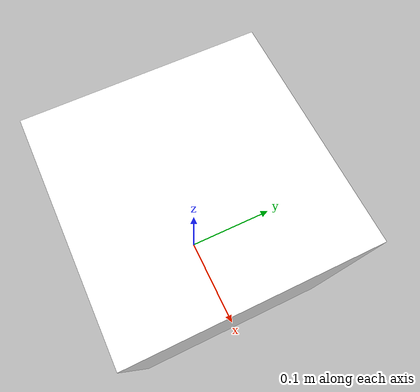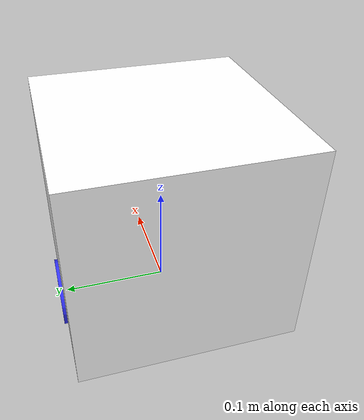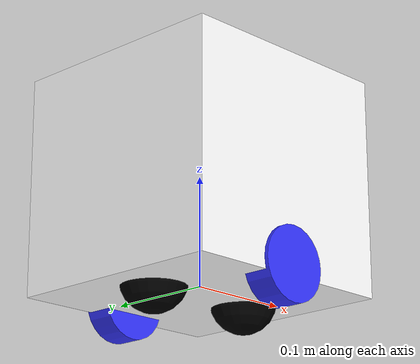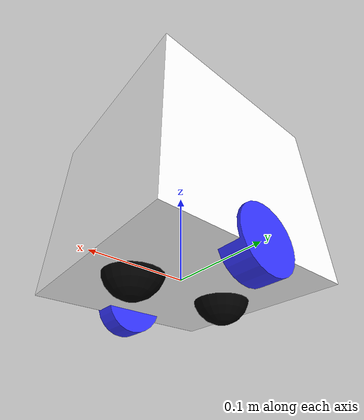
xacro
<?xml version="1.0"?>
<robot xmlns:xacro="http://www.ros.org/wiki/xacro" >

    <xacro:include filename="inertial_macros.xacro"/>

    <xacro:property name="chassis_length" value="0.21"/>
    <xacro:property name="chassis_width" value="0.21"/>
    <xacro:property name="chassis_height" value="0.20"/>
    <xacro:property name="chassis_mass" value="1.0"/>
    <xacro:property name="wheel_radius" value="0.033"/>
    <xacro:property name="wheel_thickness" value="0.026"/>
    <xacro:property name="wheel_mass" value="0.05"/>
    <xacro:property name="wheel_offset_x" value="0.105"/>
    <xacro:property name="wheel_offset_y" value="0.09525"/>
    <xacro:property name="wheel_offset_z" value="0.01"/>
    <xacro:property name="caster_wheel_radius" value="0.03"/>
    <xacro:property name="caster_wheel_mass" value="0.01"/>
    <xacro:property name="caster_wheel_offset_z" value="0.007"/>

    <material name="white">
        <color rgba="1 1 1 1" />
    </material>

    <material name="orange">
        <color rgba="1 0.3 0.1 1"/>
    </material>

    <material name="blue">
        <color rgba="0.2 0.2 1 1"/>
    </material>

    <material name="black">
        <color rgba="0 0 0 1"/>
    </material>

    <material name="red">
        <color rgba="1 0 0 1"/>
    </material>

    <!-- BASE LINK -->

    <link name="base_link">

    </link>

    <!-- BASE_FOOTPRINT LINK -->

    <joint name="base_footprint_joint" type="fixed">
        <parent link="base_link"/>
        <child link="base_footprint"/>
        <origin xyz="0 0 0" rpy="0 0 0"/>
    </joint>

    <link name="base_footprint">
    </link>

    <!-- CHASSIS LINK -->

    <joint name="chassis_joint" type="fixed">
        <parent link="base_link"/>
        <child link="chassis"/>
        <origin xyz="${-wheel_offset_x} 0 ${-wheel_offset_z}"/>
    </joint>

    <link name="chassis">
        <visual>
            <origin xyz="${chassis_length/2} 0 ${chassis_height/2}"/>
            <geometry>
                <box size="${chassis_length} ${chassis_width} ${chassis_height}"/>
            </geometry>
            <material name="white"/>
        </visual>
        <collision>
            <origin xyz="${chassis_length/2} 0 ${chassis_height/2}"/>
            <geometry>
                <box size="${chassis_length} ${chassis_width} ${chassis_height}"/>
            </geometry>
        </collision>
        <xacro:inertial_box mass="0.5" x="${chassis_length}" y="${chassis_width}" z="${chassis_height}">
            <origin xyz="${chassis_length/2} 0 ${chassis_height/2}" rpy="0 0 0"/>
        </xacro:inertial_box>
    </link>

    <gazebo reference="chassis">
        <material>Gazebo/White</material>
    </gazebo>

    <!-- LEFT WHEEL LINK -->

    <joint name="left_wheel_joint" type="continuous">
        <parent link="base_link"/>
        <child link="left_wheel"/>
        <origin xyz="0 ${wheel_offset_y} 0" rpy="-${pi/2} 0 0" />
        <axis xyz="0 0 1"/>
    </joint>

    <link name="left_wheel">
        <visual>
            <geometry>
                <cylinder radius="${wheel_radius}" length="${wheel_thickness}"/>
            </geometry>
            <material name="blue"/>
        </visual>
        <collision>
            <geometry>
                <sphere radius="${wheel_radius}"/>
            </geometry>
        </collision>
        <xacro:inertial_cylinder mass="${wheel_mass}" length="${wheel_thickness}" radius="${wheel_radius}">
            <origin xyz="0 0 0" rpy="0 0 0"/>
        </xacro:inertial_cylinder>
    </link>

    <gazebo reference="left_wheel">
        <material>Gazebo/Blue</material>
    </gazebo>

    <!-- RIGHT WHEEL LINK -->

    <joint name="right_wheel_joint" type="continuous">
        <parent link="base_link"/>
        <child link="right_wheel"/>
        <origin xyz="0 ${-wheel_offset_y} 0" rpy="${pi/2} 0 0" />
        <axis xyz="0 0 -1"/>
    </joint>

    <link name="right_wheel">
        <visual>
            <geometry>
                <cylinder radius="${wheel_radius}" length="${wheel_thickness}"/>
            </geometry>
            <material name="blue"/>
        </visual>
        <collision>
            <geometry>
                <sphere radius="${wheel_radius}"/>
            </geometry>
        </collision>
        <xacro:inertial_cylinder mass="${wheel_mass}" length="${wheel_thickness}" radius="${wheel_radius}">
            <origin xyz="0 0 0" rpy="0 0 0"/>
        </xacro:inertial_cylinder>
    </link>

    <gazebo reference="right_wheel">
        <material>Gazebo/Blue</material>
    </gazebo>

    <!-- CASTER WHEEL LINK -->

    <joint name="caster_wheel_joint" type="fixed">
        <parent link="chassis"/>
        <child link="caster_wheel"/>
        <origin xyz="0.05 0 ${caster_wheel_offset_z}"/>
    </joint>

    <link name="caster_wheel">
        <visual>
            <geometry>
                <sphere radius="${caster_wheel_radius}"/>
            </geometry>
            <material name="black"/>
        </visual>
        <collision>
            <geometry>
                <sphere radius="${caster_wheel_radius}"/>
            </geometry>
        </collision>
        <xacro:inertial_sphere mass="${caster_wheel_mass}" radius="${caster_wheel_radius}">
            <origin xyz="0 0 0" rpy="0 0 0"/>
        </xacro:inertial_sphere>
    </link>

    <gazebo reference="caster_wheel">
        <material>Gazebo/Black</material>
        <mu1 value="0.001"/>
        <mu2 value="0.001"/>

    </gazebo>

    <!-- CASTER WHEEL LINK 2-->

    <joint name="caster_wheel_joint2" type="fixed">
        <parent link="chassis"/>
        <child link="caster_wheel2"/>
        <origin xyz="0.16 0 ${caster_wheel_offset_z}"/>
    </joint>

    <link name="caster_wheel2">
        <visual>
            <geometry>
                <sphere radius="${caster_wheel_radius}"/>
            </geometry>
            <material name="black"/>
        </visual>
        <collision>
            <geometry>
                <sphere radius="${caster_wheel_radius}"/>
            </geometry>
        </collision>
        <xacro:inertial_sphere mass="${caster_wheel_mass}" radius="${caster_wheel_radius}">
            <origin xyz="0 0 0" rpy="0 0 0"/>
        </xacro:inertial_sphere>
    </link>

    <gazebo reference="caster_wheel2">
        <material>Gazebo/Black</material>
        <mu1 value="0.001"/>
        <mu2 value="0.001"/>

    </gazebo>

</robot>
